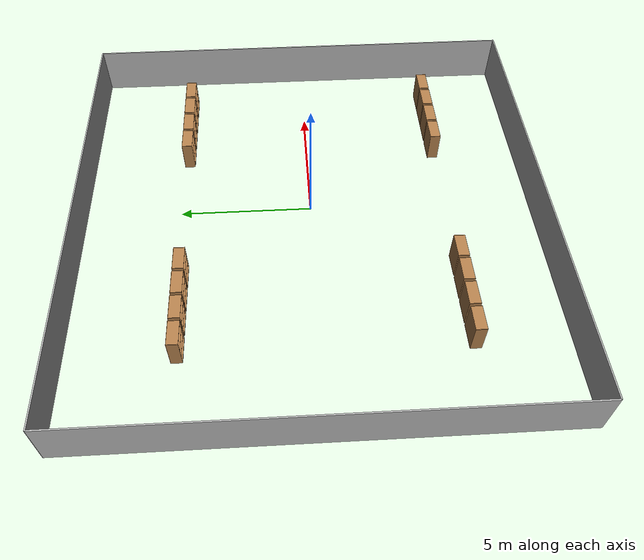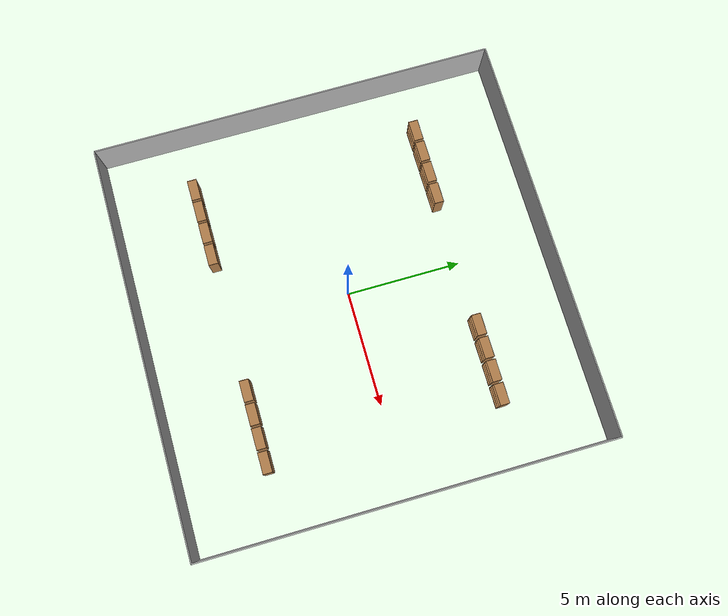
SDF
<sdf version="13">
 <model name="test_environment">
  <static>true</static>
  <link name="boundary_one">
   <pose>0 -9 0 0 0 0</pose>
   <collision name="collision"><geometry><box><size>18 .05 2</size></box></geometry></collision>
   <visual name="visual">
    <geometry><box><size>18 .05 2</size></box></geometry>
    <material>
     <script>
      <uri>model://brick_box_3x1x3/materials/scripts</uri>
      <uri>model://brick_box_3x1x3/materials/textures</uri>
      <name>BrickBox/Diffuse</name>
     </script>
    </material>
   </visual>
  </link>
  <link name="boundary_two">
   <pose>0 9 0 0 0 0</pose>
   <collision name="collision"><geometry><box><size>18 .05 2</size></box></geometry></collision>
   <visual name="visual">
    <geometry><box><size>18 .05 2</size></box></geometry>
    <material>
     <script>
      <uri>model://brick_box_3x1x3/materials/scripts</uri>
      <uri>model://brick_box_3x1x3/materials/textures</uri>
      <name>BrickBox/Diffuse</name>
     </script>
    </material>
   </visual>
  </link>
  <link name="boundary_three">
   <pose>9 0 0 0 0 1.57</pose>
   <collision name="collision"><geometry><box><size>18 .05 2</size></box></geometry></collision>
   <visual name="visual">
    <geometry><box><size>18 .05 2</size></box></geometry>
    <material>
     <script>
      <uri>model://brick_box_3x1x3/materials/scripts</uri>
      <uri>model://brick_box_3x1x3/materials/textures</uri>
      <name>BrickBox/Diffuse</name>
     </script>
    </material>
   </visual>
  </link>
  <link name="boundary_four">
   <pose>-9 0 0 0 0 1.57</pose>
   <collision name="collision"><geometry><box><size>18 .05 2</size></box></geometry></collision>
   <visual name="visual">
    <geometry><box><size>18 .05 2</size></box></geometry>
    <material>
     <script>
      <uri>model://brick_box_3x1x3/materials/scripts</uri>
      <uri>model://brick_box_3x1x3/materials/textures</uri>
      <name>BrickBox/Diffuse</name>
     </script>
    </material>
   </visual>
  </link>
  <link name="link">
   <pose>6 5 0 0 0 0</pose>
   <inertial><mass>1.0</mass></inertial>
   <collision name="back">
    <pose>0 0.005 0.6 0 0 0</pose>
    <geometry><box><size>0.9 0.01 1.2</size></box></geometry>
   </collision>
   <visual name="visual1">
    <pose>0 0.005 0.6 0 0 0</pose>
    <geometry><box><size>0.9 0.01 1.2</size></box></geometry>
    <material>
     <script><uri>file://media/materials/scripts/gazebo.material</uri><name>Gazebo/Wood</name></script>
    </material>
   </visual>
   <collision name="left_side">
    <pose>0.45 -0.195 0.6 0 0 0</pose>
    <geometry><box><size>0.02 0.4 1.2</size></box></geometry>
   </collision>
   <visual name="visual2">
    <pose>0.45 -0.195 0.6 0 0 0</pose>
    <geometry><box><size>0.02 0.4 1.2</size></box></geometry>
    <material>
     <script><uri>file://media/materials/scripts/gazebo.material</uri><name>Gazebo/Wood</name></script>
    </material>
   </visual>
   <collision name="right_side">
    <pose>-0.45 -0.195 0.6 0 0 0</pose>
    <geometry><box><size>0.02 0.4 1.2</size></box></geometry>
   </collision>
   <visual name="visual3">
    <pose>-0.45 -0.195 0.6 0 0 0</pose>
    <geometry><box><size>0.02 0.4 1.2</size></box></geometry>
    <material>
     <script><uri>file://media/materials/scripts/gazebo.material</uri><name>Gazebo/Wood</name></script>
    </material>
   </visual>
   <collision name="bottom">
    <pose>0 -0.195 0.03 0 0 0</pose>
    <geometry><box><size>0.88 0.4 0.06</size></box></geometry>
   </collision>
   <visual name="visual4">
    <pose>0 -0.195 0.03 0 0 0</pose>
    <geometry><box><size>0.88 0.4 0.06</size></box></geometry>
    <material>
     <script><uri>file://media/materials/scripts/gazebo.material</uri><name>Gazebo/Wood</name></script>
    </material>
   </visual>
   <collision name="top">
    <pose>0 -0.195 1.19 0 0 0</pose>
    <geometry><box><size>0.88 0.4 0.02</size></box></geometry>
   </collision>
   <visual name="visual5">
    <pose>0 -0.195 1.19 0 0 0</pose>
    <geometry><box><size>0.88 0.4 0.02</size></box></geometry>
    <material>
     <script><uri>file://media/materials/scripts/gazebo.material</uri><name>Gazebo/Wood</name></script>
    </material>
   </visual>
   <collision name="low_shelf">
    <pose>0 -0.195 0.43 0 0 0</pose>
    <geometry><box><size>0.88 0.4 0.02</size></box></geometry>
   </collision>
   <visual name="visual6">
    <pose>0 -0.195 0.43 0 0 0</pose>
    <geometry><box><size>0.88 0.4 0.02</size></box></geometry>
    <material>
     <script><uri>file://media/materials/scripts/gazebo.material</uri><name>Gazebo/Wood</name></script>
    </material>
   </visual>
   <collision name="high_shelf">
    <pose>0 -0.195 0.8 0 0 0</pose>
    <geometry><box><size>0.88 0.4 0.02</size></box></geometry>
   </collision>
   <visual name="visual7">
    <pose>0 -0.195 0.8 0 0 0</pose>
    <geometry><box><size>0.88 0.4 0.02</size></box></geometry>
    <material>
     <script><uri>file://media/materials/scripts/gazebo.material</uri><name>Gazebo/Wood</name></script>
    </material>
   </visual>
  </link>
  <link name="link">
   <pose>5 5 0 0 0 0</pose>
   <inertial><mass>1.0</mass></inertial>
   <collision name="back">
    <pose>0 0.005 0.6 0 0 0</pose>
    <geometry><box><size>0.9 0.01 1.2</size></box></geometry>
   </collision>
   <visual name="visual1">
    <pose>0 0.005 0.6 0 0 0</pose>
    <geometry><box><size>0.9 0.01 1.2</size></box></geometry>
    <material>
     <script><uri>file://media/materials/scripts/gazebo.material</uri><name>Gazebo/Wood</name></script>
    </material>
   </visual>
   <collision name="left_side">
    <pose>0.45 -0.195 0.6 0 0 0</pose>
    <geometry><box><size>0.02 0.4 1.2</size></box></geometry>
   </collision>
   <visual name="visual2">
    <pose>0.45 -0.195 0.6 0 0 0</pose>
    <geometry><box><size>0.02 0.4 1.2</size></box></geometry>
    <material>
     <script><uri>file://media/materials/scripts/gazebo.material</uri><name>Gazebo/Wood</name></script>
    </material>
   </visual>
   <collision name="right_side">
    <pose>-0.45 -0.195 0.6 0 0 0</pose>
    <geometry><box><size>0.02 0.4 1.2</size></box></geometry>
   </collision>
   <visual name="visual3">
    <pose>-0.45 -0.195 0.6 0 0 0</pose>
    <geometry><box><size>0.02 0.4 1.2</size></box></geometry>
    <material>
     <script><uri>file://media/materials/scripts/gazebo.material</uri><name>Gazebo/Wood</name></script>
    </material>
   </visual>
   <collision name="bottom">
    <pose>0 -0.195 0.03 0 0 0</pose>
    <geometry><box><size>0.88 0.4 0.06</size></box></geometry>
   </collision>
   <visual name="visual4">
    <pose>0 -0.195 0.03 0 0 0</pose>
    <geometry><box><size>0.88 0.4 0.06</size></box></geometry>
    <material>
     <script><uri>file://media/materials/scripts/gazebo.material</uri><name>Gazebo/Wood</name></script>
    </material>
   </visual>
   <collision name="top">
    <pose>0 -0.195 1.19 0 0 0</pose>
    <geometry><box><size>0.88 0.4 0.02</size></box></geometry>
   </collision>
   <visual name="visual5">
    <pose>0 -0.195 1.19 0 0 0</pose>
    <geometry><box><size>0.88 0.4 0.02</size></box></geometry>
    <material>
     <script><uri>file://media/materials/scripts/gazebo.material</uri><name>Gazebo/Wood</name></script>
    </material>
   </visual>
   <collision name="low_shelf">
    <pose>0 -0.195 0.43 0 0 0</pose>
    <geometry><box><size>0.88 0.4 0.02</size></box></geometry>
   </collision>
   <visual name="visual6">
    <pose>0 -0.195 0.43 0 0 0</pose>
    <geometry><box><size>0.88 0.4 0.02</size></box></geometry>
    <material>
     <script><uri>file://media/materials/scripts/gazebo.material</uri><name>Gazebo/Wood</name></script>
    </material>
   </visual>
   <collision name="high_shelf">
    <pose>0 -0.195 0.8 0 0 0</pose>
    <geometry><box><size>0.88 0.4 0.02</size></box></geometry>
   </collision>
   <visual name="visual7">
    <pose>0 -0.195 0.8 0 0 0</pose>
    <geometry><box><size>0.88 0.4 0.02</size></box></geometry>
    <material>
     <script><uri>file://media/materials/scripts/gazebo.material</uri><name>Gazebo/Wood</name></script>
    </material>
   </visual>
  </link>
  <link name="link">
   <pose>4 5 0 0 0 0</pose>
   <inertial><mass>1.0</mass></inertial>
   <collision name="back">
    <pose>0 0.005 0.6 0 0 0</pose>
    <geometry><box><size>0.9 0.01 1.2</size></box></geometry>
   </collision>
   <visual name="visual1">
    <pose>0 0.005 0.6 0 0 0</pose>
    <geometry><box><size>0.9 0.01 1.2</size></box></geometry>
    <material>
     <script><uri>file://media/materials/scripts/gazebo.material</uri><name>Gazebo/Wood</name></script>
    </material>
   </visual>
   <collision name="left_side">
    <pose>0.45 -0.195 0.6 0 0 0</pose>
    <geometry><box><size>0.02 0.4 1.2</size></box></geometry>
   </collision>
   <visual name="visual2">
    <pose>0.45 -0.195 0.6 0 0 0</pose>
    <geometry><box><size>0.02 0.4 1.2</size></box></geometry>
    <material>
     <script><uri>file://media/materials/scripts/gazebo.material</uri><name>Gazebo/Wood</name></script>
    </material>
   </visual>
   <collision name="right_side">
    <pose>-0.45 -0.195 0.6 0 0 0</pose>
    <geometry><box><size>0.02 0.4 1.2</size></box></geometry>
   </collision>
   <visual name="visual3">
    <pose>-0.45 -0.195 0.6 0 0 0</pose>
    <geometry><box><size>0.02 0.4 1.2</size></box></geometry>
    <material>
     <script><uri>file://media/materials/scripts/gazebo.material</uri><name>Gazebo/Wood</name></script>
    </material>
   </visual>
   <collision name="bottom">
    <pose>0 -0.195 0.03 0 0 0</pose>
    <geometry><box><size>0.88 0.4 0.06</size></box></geometry>
   </collision>
   <visual name="visual4">
    <pose>0 -0.195 0.03 0 0 0</pose>
    <geometry><box><size>0.88 0.4 0.06</size></box></geometry>
    <material>
     <script><uri>file://media/materials/scripts/gazebo.material</uri><name>Gazebo/Wood</name></script>
    </material>
   </visual>
   <collision name="top">
    <pose>0 -0.195 1.19 0 0 0</pose>
    <geometry><box><size>0.88 0.4 0.02</size></box></geometry>
   </collision>
   <visual name="visual5">
    <pose>0 -0.195 1.19 0 0 0</pose>
    <geometry><box><size>0.88 0.4 0.02</size></box></geometry>
    <material>
     <script><uri>file://media/materials/scripts/gazebo.material</uri><name>Gazebo/Wood</name></script>
    </material>
   </visual>
   <collision name="low_shelf">
    <pose>0 -0.195 0.43 0 0 0</pose>
    <geometry><box><size>0.88 0.4 0.02</size></box></geometry>
   </collision>
   <visual name="visual6">
    <pose>0 -0.195 0.43 0 0 0</pose>
    <geometry><box><size>0.88 0.4 0.02</size></box></geometry>
    <material>
     <script><uri>file://media/materials/scripts/gazebo.material</uri><name>Gazebo/Wood</name></script>
    </material>
   </visual>
   <collision name="high_shelf">
    <pose>0 -0.195 0.8 0 0 0</pose>
    <geometry><box><size>0.88 0.4 0.02</size></box></geometry>
   </collision>
   <visual name="visual7">
    <pose>0 -0.195 0.8 0 0 0</pose>
    <geometry><box><size>0.88 0.4 0.02</size></box></geometry>
    <material>
     <script><uri>file://media/materials/scripts/gazebo.material</uri><name>Gazebo/Wood</name></script>
    </material>
   </visual>
  </link>
  <link name="link">
   <pose>3 5 0 0 0 0</pose>
   <inertial><mass>1.0</mass></inertial>
   <collision name="back">
    <pose>0 0.005 0.6 0 0 0</pose>
    <geometry><box><size>0.9 0.01 1.2</size></box></geometry>
   </collision>
   <visual name="visual1">
    <pose>0 0.005 0.6 0 0 0</pose>
    <geometry><box><size>0.9 0.01 1.2</size></box></geometry>
    <material>
     <script><uri>file://media/materials/scripts/gazebo.material</uri><name>Gazebo/Wood</name></script>
    </material>
   </visual>
   <collision name="left_side">
    <pose>0.45 -0.195 0.6 0 0 0</pose>
    <geometry><box><size>0.02 0.4 1.2</size></box></geometry>
   </collision>
   <visual name="visual2">
    <pose>0.45 -0.195 0.6 0 0 0</pose>
    <geometry><box><size>0.02 0.4 1.2</size></box></geometry>
    <material>
     <script><uri>file://media/materials/scripts/gazebo.material</uri><name>Gazebo/Wood</name></script>
    </material>
   </visual>
   <collision name="right_side">
    <pose>-0.45 -0.195 0.6 0 0 0</pose>
    <geometry><box><size>0.02 0.4 1.2</size></box></geometry>
   </collision>
   <visual name="visual3">
    <pose>-0.45 -0.195 0.6 0 0 0</pose>
    <geometry><box><size>0.02 0.4 1.2</size></box></geometry>
    <material>
     <script><uri>file://media/materials/scripts/gazebo.material</uri><name>Gazebo/Wood</name></script>
    </material>
   </visual>
   <collision name="bottom">
    <pose>0 -0.195 0.03 0 0 0</pose>
    <geometry><box><size>0.88 0.4 0.06</size></box></geometry>
   </collision>
   <visual name="visual4">
    <pose>0 -0.195 0.03 0 0 0</pose>
    <geometry><box><size>0.88 0.4 0.06</size></box></geometry>
    <material>
     <script><uri>file://media/materials/scripts/gazebo.material</uri><name>Gazebo/Wood</name></script>
    </material>
   </visual>
   <collision name="top">
    <pose>0 -0.195 1.19 0 0 0</pose>
    <geometry><box><size>0.88 0.4 0.02</size></box></geometry>
   </collision>
   <visual name="visual5">
    <pose>0 -0.195 1.19 0 0 0</pose>
    <geometry><box><size>0.88 0.4 0.02</size></box></geometry>
    <material>
     <script><uri>file://media/materials/scripts/gazebo.material</uri><name>Gazebo/Wood</name></script>
    </material>
   </visual>
   <collision name="low_shelf">
    <pose>0 -0.195 0.43 0 0 0</pose>
    <geometry><box><size>0.88 0.4 0.02</size></box></geometry>
   </collision>
   <visual name="visual6">
    <pose>0 -0.195 0.43 0 0 0</pose>
    <geometry><box><size>0.88 0.4 0.02</size></box></geometry>
    <material>
     <script><uri>file://media/materials/scripts/gazebo.material</uri><name>Gazebo/Wood</name></script>
    </material>
   </visual>
   <collision name="high_shelf">
    <pose>0 -0.195 0.8 0 0 0</pose>
    <geometry><box><size>0.88 0.4 0.02</size></box></geometry>
   </collision>
   <visual name="visual7">
    <pose>0 -0.195 0.8 0 0 0</pose>
    <geometry><box><size>0.88 0.4 0.02</size></box></geometry>
    <material>
     <script><uri>file://media/materials/scripts/gazebo.material</uri><name>Gazebo/Wood</name></script>
    </material>
   </visual>
  </link>
  <link name="link">
   <pose>-3 5 0 0 0 0</pose>
   <inertial><mass>1.0</mass></inertial>
   <collision name="back">
    <pose>0 0.005 0.6 0 0 0</pose>
    <geometry><box><size>0.9 0.01 1.2</size></box></geometry>
   </collision>
   <visual name="visual1">
    <pose>0 0.005 0.6 0 0 0</pose>
    <geometry><box><size>0.9 0.01 1.2</size></box></geometry>
    <material>
     <script><uri>file://media/materials/scripts/gazebo.material</uri><name>Gazebo/Wood</name></script>
    </material>
   </visual>
   <collision name="left_side">
    <pose>0.45 -0.195 0.6 0 0 0</pose>
    <geometry><box><size>0.02 0.4 1.2</size></box></geometry>
   </collision>
   <visual name="visual2">
    <pose>0.45 -0.195 0.6 0 0 0</pose>
    <geometry><box><size>0.02 0.4 1.2</size></box></geometry>
    <material>
     <script><uri>file://media/materials/scripts/gazebo.material</uri><name>Gazebo/Wood</name></script>
    </material>
   </visual>
   <collision name="right_side">
    <pose>-0.45 -0.195 0.6 0 0 0</pose>
    <geometry><box><size>0.02 0.4 1.2</size></box></geometry>
   </collision>
   <visual name="visual3">
    <pose>-0.45 -0.195 0.6 0 0 0</pose>
    <geometry><box><size>0.02 0.4 1.2</size></box></geometry>
    <material>
     <script><uri>file://media/materials/scripts/gazebo.material</uri><name>Gazebo/Wood</name></script>
    </material>
   </visual>
   <collision name="bottom">
    <pose>0 -0.195 0.03 0 0 0</pose>
    <geometry><box><size>0.88 0.4 0.06</size></box></geometry>
   </collision>
   <visual name="visual4">
    <pose>0 -0.195 0.03 0 0 0</pose>
    <geometry><box><size>0.88 0.4 0.06</size></box></geometry>
    <material>
     <script><uri>file://media/materials/scripts/gazebo.material</uri><name>Gazebo/Wood</name></script>
    </material>
   </visual>
   <collision name="top">
    <pose>0 -0.195 1.19 0 0 0</pose>
    <geometry><box><size>0.88 0.4 0.02</size></box></geometry>
   </collision>
   <visual name="visual5">
    <pose>0 -0.195 1.19 0 0 0</pose>
    <geometry><box><size>0.88 0.4 0.02</size></box></geometry>
    <material>
     <script><uri>file://media/materials/scripts/gazebo.material</uri><name>Gazebo/Wood</name></script>
    </material>
   </visual>
   <collision name="low_shelf">
    <pose>0 -0.195 0.43 0 0 0</pose>
    <geometry><box><size>0.88 0.4 0.02</size></box></geometry>
   </collision>
   <visual name="visual6">
    <pose>0 -0.195 0.43 0 0 0</pose>
    <geometry><box><size>0.88 0.4 0.02</size></box></geometry>
    <material>
     <script><uri>file://media/materials/scripts/gazebo.material</uri><name>Gazebo/Wood</name></script>
    </material>
   </visual>
   <collision name="high_shelf">
    <pose>0 -0.195 0.8 0 0 0</pose>
    <geometry><box><size>0.88 0.4 0.02</size></box></geometry>
   </collision>
   <visual name="visual7">
    <pose>0 -0.195 0.8 0 0 0</pose>
    <geometry><box><size>0.88 0.4 0.02</size></box></geometry>
    <material>
     <script><uri>file://media/materials/scripts/gazebo.material</uri><name>Gazebo/Wood</name></script>
    </material>
   </visual>
  </link>
  <link name="link">
   <pose>-4 5 0 0 0 0</pose>
   <inertial><mass>1.0</mass></inertial>
   <collision name="back">
    <pose>0 0.005 0.6 0 0 0</pose>
    <geometry><box><size>0.9 0.01 1.2</size></box></geometry>
   </collision>
   <visual name="visual1">
    <pose>0 0.005 0.6 0 0 0</pose>
    <geometry><box><size>0.9 0.01 1.2</size></box></geometry>
    <material>
     <script><uri>file://media/materials/scripts/gazebo.material</uri><name>Gazebo/Wood</name></script>
    </material>
   </visual>
   <collision name="left_side">
    <pose>0.45 -0.195 0.6 0 0 0</pose>
    <geometry><box><size>0.02 0.4 1.2</size></box></geometry>
   </collision>
   <visual name="visual2">
    <pose>0.45 -0.195 0.6 0 0 0</pose>
    <geometry><box><size>0.02 0.4 1.2</size></box></geometry>
    <material>
     <script><uri>file://media/materials/scripts/gazebo.material</uri><name>Gazebo/Wood</name></script>
    </material>
   </visual>
   <collision name="right_side">
    <pose>-0.45 -0.195 0.6 0 0 0</pose>
    <geometry><box><size>0.02 0.4 1.2</size></box></geometry>
   </collision>
   <visual name="visual3">
    <pose>-0.45 -0.195 0.6 0 0 0</pose>
    <geometry><box><size>0.02 0.4 1.2</size></box></geometry>
    <material>
     <script><uri>file://media/materials/scripts/gazebo.material</uri><name>Gazebo/Wood</name></script>
    </material>
   </visual>
   <collision name="bottom">
    <pose>0 -0.195 0.03 0 0 0</pose>
    <geometry><box><size>0.88 0.4 0.06</size></box></geometry>
   </collision>
   <visual name="visual4">
    <pose>0 -0.195 0.03 0 0 0</pose>
    <geometry><box><size>0.88 0.4 0.06</size></box></geometry>
    <material>
     <script><uri>file://media/materials/scripts/gazebo.material</uri><name>Gazebo/Wood</name></script>
    </material>
   </visual>
   <collision name="top">
    <pose>0 -0.195 1.19 0 0 0</pose>
    <geometry><box><size>0.88 0.4 0.02</size></box></geometry>
   </collision>
   <visual name="visual5">
    <pose>0 -0.195 1.19 0 0 0</pose>
    <geometry><box><size>0.88 0.4 0.02</size></box></geometry>
    <material>
     <script><uri>file://media/materials/scripts/gazebo.material</uri><name>Gazebo/Wood</name></script>
    </material>
   </visual>
   <collision name="low_shelf">
    <pose>0 -0.195 0.43 0 0 0</pose>
    <geometry><box><size>0.88 0.4 0.02</size></box></geometry>
   </collision>
   <visual name="visual6">
    <pose>0 -0.195 0.43 0 0 0</pose>
    <geometry><box><size>0.88 0.4 0.02</size></box></geometry>
    <material>
     <script><uri>file://media/materials/scripts/gazebo.material</uri><name>Gazebo/Wood</name></script>
    </material>
   </visual>
   <collision name="high_shelf">
    <pose>0 -0.195 0.8 0 0 0</pose>
    <geometry><box><size>0.88 0.4 0.02</size></box></geometry>
   </collision>
   <visual name="visual7">
    <pose>0 -0.195 0.8 0 0 0</pose>
    <geometry><box><size>0.88 0.4 0.02</size></box></geometry>
    <material>
     <script><uri>file://media/materials/scripts/gazebo.material</uri><name>Gazebo/Wood</name></script>
    </material>
   </visual>
  </link>
  <link name="link">
   <pose>-5 5 0 0 0 0</pose>
   <inertial><mass>1.0</mass></inertial>
   <collision name="back">
    <pose>0 0.005 0.6 0 0 0</pose>
    <geometry><box><size>0.9 0.01 1.2</size></box></geometry>
   </collision>
   <visual name="visual1">
    <pose>0 0.005 0.6 0 0 0</pose>
    <geometry><box><size>0.9 0.01 1.2</size></box></geometry>
    <material>
     <script><uri>file://media/materials/scripts/gazebo.material</uri><name>Gazebo/Wood</name></script>
    </material>
   </visual>
   <collision name="left_side">
    <pose>0.45 -0.195 0.6 0 0 0</pose>
    <geometry><box><size>0.02 0.4 1.2</size></box></geometry>
   </collision>
   <visual name="visual2">
    <pose>0.45 -0.195 0.6 0 0 0</pose>
    <geometry><box><size>0.02 0.4 1.2</size></box></geometry>
    <material>
     <script><uri>file://media/materials/scripts/gazebo.material</uri><name>Gazebo/Wood</name></script>
    </material>
   </visual>
   <collision name="right_side">
    <pose>-0.45 -0.195 0.6 0 0 0</pose>
    <geometry><box><size>0.02 0.4 1.2</size></box></geometry>
   </collision>
   <visual name="visual3">
    <pose>-0.45 -0.195 0.6 0 0 0</pose>
    <geometry><box><size>0.02 0.4 1.2</size></box></geometry>
    <material>
     <script><uri>file://media/materials/scripts/gazebo.material</uri><name>Gazebo/Wood</name></script>
    </material>
   </visual>
   <collision name="bottom">
    <pose>0 -0.195 0.03 0 0 0</pose>
    <geometry><box><size>0.88 0.4 0.06</size></box></geometry>
   </collision>
   <visual name="visual4">
    <pose>0 -0.195 0.03 0 0 0</pose>
    <geometry><box><size>0.88 0.4 0.06</size></box></geometry>
    <material>
     <script><uri>file://media/materials/scripts/gazebo.material</uri><name>Gazebo/Wood</name></script>
    </material>
   </visual>
   <collision name="top">
    <pose>0 -0.195 1.19 0 0 0</pose>
    <geometry><box><size>0.88 0.4 0.02</size></box></geometry>
   </collision>
   <visual name="visual5">
    <pose>0 -0.195 1.19 0 0 0</pose>
    <geometry><box><size>0.88 0.4 0.02</size></box></geometry>
    <material>
     <script><uri>file://media/materials/scripts/gazebo.material</uri><name>Gazebo/Wood</name></script>
    </material>
   </visual>
   <collision name="low_shelf">
    <pose>0 -0.195 0.43 0 0 0</pose>
    <geometry><box><size>0.88 0.4 0.02</size></box></geometry>
   </collision>
   <visual name="visual6">
    <pose>0 -0.195 0.43 0 0 0</pose>
    <geometry><box><size>0.88 0.4 0.02</size></box></geometry>
    <material>
     <script><uri>file://media/materials/scripts/gazebo.material</uri><name>Gazebo/Wood</name></script>
    </material>
   </visual>
   <collision name="high_shelf">
    <pose>0 -0.195 0.8 0 0 0</pose>
    <geometry><box><size>0.88 0.4 0.02</size></box></geometry>
   </collision>
   <visual name="visual7">
    <pose>0 -0.195 0.8 0 0 0</pose>
    <geometry><box><size>0.88 0.4 0.02</size></box></geometry>
    <material>
     <script><uri>file://media/materials/scripts/gazebo.material</uri><name>Gazebo/Wood</name></script>
    </material>
   </visual>
  </link>
  <link name="link">
   <pose>-6 5 0 0 0 0</pose>
   <inertial><mass>1.0</mass></inertial>
   <collision name="back">
    <pose>0 0.005 0.6 0 0 0</pose>
    <geometry><box><size>0.9 0.01 1.2</size></box></geometry>
   </collision>
   <visual name="visual1">
    <pose>0 0.005 0.6 0 0 0</pose>
    <geometry><box><size>0.9 0.01 1.2</size></box></geometry>
    <material>
     <script><uri>file://media/materials/scripts/gazebo.material</uri><name>Gazebo/Wood</name></script>
    </material>
   </visual>
   <collision name="left_side">
    <pose>0.45 -0.195 0.6 0 0 0</pose>
    <geometry><box><size>0.02 0.4 1.2</size></box></geometry>
   </collision>
   <visual name="visual2">
    <pose>0.45 -0.195 0.6 0 0 0</pose>
    <geometry><box><size>0.02 0.4 1.2</size></box></geometry>
    <material>
     <script><uri>file://media/materials/scripts/gazebo.material</uri><name>Gazebo/Wood</name></script>
    </material>
   </visual>
   <collision name="right_side">
    <pose>-0.45 -0.195 0.6 0 0 0</pose>
    <geometry><box><size>0.02 0.4 1.2</size></box></geometry>
   </collision>
   <visual name="visual3">
    <pose>-0.45 -0.195 0.6 0 0 0</pose>
    <geometry><box><size>0.02 0.4 1.2</size></box></geometry>
    <material>
     <script><uri>file://media/materials/scripts/gazebo.material</uri><name>Gazebo/Wood</name></script>
    </material>
   </visual>
   <collision name="bottom">
    <pose>0 -0.195 0.03 0 0 0</pose>
    <geometry><box><size>0.88 0.4 0.06</size></box></geometry>
   </collision>
   <visual name="visual4">
    <pose>0 -0.195 0.03 0 0 0</pose>
    <geometry><box><size>0.88 0.4 0.06</size></box></geometry>
    <material>
     <script><uri>file://media/materials/scripts/gazebo.material</uri><name>Gazebo/Wood</name></script>
    </material>
   </visual>
   <collision name="top">
    <pose>0 -0.195 1.19 0 0 0</pose>
    <geometry><box><size>0.88 0.4 0.02</size></box></geometry>
   </collision>
   <visual name="visual5">
    <pose>0 -0.195 1.19 0 0 0</pose>
    <geometry><box><size>0.88 0.4 0.02</size></box></geometry>
    <material>
     <script><uri>file://media/materials/scripts/gazebo.material</uri><name>Gazebo/Wood</name></script>
    </material>
   </visual>
   <collision name="low_shelf">
    <pose>0 -0.195 0.43 0 0 0</pose>
    <geometry><box><size>0.88 0.4 0.02</size></box></geometry>
   </collision>
   <visual name="visual6">
    <pose>0 -0.195 0.43 0 0 0</pose>
    <geometry><box><size>0.88 0.4 0.02</size></box></geometry>
    <material>
     <script><uri>file://media/materials/scripts/gazebo.material</uri><name>Gazebo/Wood</name></script>
    </material>
   </visual>
   <collision name="high_shelf">
    <pose>0 -0.195 0.8 0 0 0</pose>
    <geometry><box><size>0.88 0.4 0.02</size></box></geometry>
   </collision>
   <visual name="visual7">
    <pose>0 -0.195 0.8 0 0 0</pose>
    <geometry><box><size>0.88 0.4 0.02</size></box></geometry>
    <material>
     <script><uri>file://media/materials/scripts/gazebo.material</uri><name>Gazebo/Wood</name></script>
    </material>
   </visual>
  </link>
  <link name="link">
   <pose>6 -5 0 0 0 0</pose>
   <inertial><mass>1.0</mass></inertial>
   <collision name="back">
    <pose>0 0.005 0.6 0 0 0</pose>
    <geometry><box><size>0.9 0.01 1.2</size></box></geometry>
   </collision>
   <visual name="visual1">
    <pose>0 0.005 0.6 0 0 0</pose>
    <geometry><box><size>0.9 0.01 1.2</size></box></geometry>
    <material>
     <script><uri>file://media/materials/scripts/gazebo.material</uri><name>Gazebo/Wood</name></script>
    </material>
   </visual>
   <collision name="left_side">
    <pose>0.45 -0.195 0.6 0 0 0</pose>
    <geometry><box><size>0.02 0.4 1.2</size></box></geometry>
   </collision>
   <visual name="visual2">
    <pose>0.45 -0.195 0.6 0 0 0</pose>
    <geometry><box><size>0.02 0.4 1.2</size></box></geometry>
    <material>
     <script><uri>file://media/materials/scripts/gazebo.material</uri><name>Gazebo/Wood</name></script>
    </material>
   </visual>
   <collision name="right_side">
    <pose>-0.45 -0.195 0.6 0 0 0</pose>
    <geometry><box><size>0.02 0.4 1.2</size></box></geometry>
   </collision>
   <visual name="visual3">
    <pose>-0.45 -0.195 0.6 0 0 0</pose>
    <geometry><box><size>0.02 0.4 1.2</size></box></geometry>
    <material>
     <script><uri>file://media/materials/scripts/gazebo.material</uri><name>Gazebo/Wood</name></script>
    </material>
   </visual>
   <collision name="bottom">
    <pose>0 -0.195 0.03 0 0 0</pose>
    <geometry><box><size>0.88 0.4 0.06</size></box></geometry>
   </collision>
   <visual name="visual4">
    <pose>0 -0.195 0.03 0 0 0</pose>
    <geometry><box><size>0.88 0.4 0.06</size></box></geometry>
    <material>
     <script><uri>file://media/materials/scripts/gazebo.material</uri><name>Gazebo/Wood</name></script>
    </material>
   </visual>
   <collision name="top">
    <pose>0 -0.195 1.19 0 0 0</pose>
    <geometry><box><size>0.88 0.4 0.02</size></box></geometry>
   </collision>
   <visual name="visual5">
    <pose>0 -0.195 1.19 0 0 0</pose>
    <geometry><box><size>0.88 0.4 0.02</size></box></geometry>
    <material>
     <script><uri>file://media/materials/scripts/gazebo.material</uri><name>Gazebo/Wood</name></script>
    </material>
   </visual>
   <collision name="low_shelf">
    <pose>0 -0.195 0.43 0 0 0</pose>
    <geometry><box><size>0.88 0.4 0.02</size></box></geometry>
   </collision>
   <visual name="visual6">
    <pose>0 -0.195 0.43 0 0 0</pose>
    <geometry><box><size>0.88 0.4 0.02</size></box></geometry>
    <material>
     <script><uri>file://media/materials/scripts/gazebo.material</uri><name>Gazebo/Wood</name></script>
    </material>
   </visual>
   <collision name="high_shelf">
    <pose>0 -0.195 0.8 0 0 0</pose>
    <geometry><box><size>0.88 0.4 0.02</size></box></geometry>
   </collision>
   <visual name="visual7">
    <pose>0 -0.195 0.8 0 0 0</pose>
    <geometry><box><size>0.88 0.4 0.02</size></box></geometry>
    <material>
     <script><uri>file://media/materials/scripts/gazebo.material</uri><name>Gazebo/Wood</name></script>
    </material>
   </visual>
  </link>
  <link name="link">
   <pose>5 -5 0 0 0 0</pose>
   <inertial><mass>1.0</mass></inertial>
   <collision name="back">
    <pose>0 0.005 0.6 0 0 0</pose>
    <geometry><box><size>0.9 0.01 1.2</size></box></geometry>
   </collision>
   <visual name="visual1">
    <pose>0 0.005 0.6 0 0 0</pose>
    <geometry><box><size>0.9 0.01 1.2</size></box></geometry>
    <material>
     <script><uri>file://media/materials/scripts/gazebo.material</uri><name>Gazebo/Wood</name></script>
    </material>
   </visual>
   <collision name="left_side">
    <pose>0.45 -0.195 0.6 0 0 0</pose>
    <geometry><box><size>0.02 0.4 1.2</size></box></geometry>
   </collision>
   <visual name="visual2">
    <pose>0.45 -0.195 0.6 0 0 0</pose>
    <geometry><box><size>0.02 0.4 1.2</size></box></geometry>
    <material>
     <script><uri>file://media/materials/scripts/gazebo.material</uri><name>Gazebo/Wood</name></script>
    </material>
   </visual>
   <collision name="right_side">
    <pose>-0.45 -0.195 0.6 0 0 0</pose>
    <geometry><box><size>0.02 0.4 1.2</size></box></geometry>
   </collision>
   <visual name="visual3">
    <pose>-0.45 -0.195 0.6 0 0 0</pose>
    <geometry><box><size>0.02 0.4 1.2</size></box></geometry>
    <material>
     <script><uri>file://media/materials/scripts/gazebo.material</uri><name>Gazebo/Wood</name></script>
    </material>
   </visual>
   <collision name="bottom">
    <pose>0 -0.195 0.03 0 0 0</pose>
    <geometry><box><size>0.88 0.4 0.06</size></box></geometry>
   </collision>
   <visual name="visual4">
    <pose>0 -0.195 0.03 0 0 0</pose>
    <geometry><box><size>0.88 0.4 0.06</size></box></geometry>
    <material>
     <script><uri>file://media/materials/scripts/gazebo.material</uri><name>Gazebo/Wood</name></script>
    </material>
   </visual>
   <collision name="top">
    <pose>0 -0.195 1.19 0 0 0</pose>
    <geometry><box><size>0.88 0.4 0.02</size></box></geometry>
   </collision>
   <visual name="visual5">
    <pose>0 -0.195 1.19 0 0 0</pose>
    <geometry><box><size>0.88 0.4 0.02</size></box></geometry>
    <material>
     <script><uri>file://media/materials/scripts/gazebo.material</uri><name>Gazebo/Wood</name></script>
    </material>
   </visual>
   <collision name="low_shelf">
    <pose>0 -0.195 0.43 0 0 0</pose>
    <geometry><box><size>0.88 0.4 0.02</size></box></geometry>
   </collision>
   <visual name="visual6">
    <pose>0 -0.195 0.43 0 0 0</pose>
    <geometry><box><size>0.88 0.4 0.02</size></box></geometry>
    <material>
     <script><uri>file://media/materials/scripts/gazebo.material</uri><name>Gazebo/Wood</name></script>
    </material>
   </visual>
   <collision name="high_shelf">
    <pose>0 -0.195 0.8 0 0 0</pose>
    <geometry><box><size>0.88 0.4 0.02</size></box></geometry>
   </collision>
   <visual name="visual7">
    <pose>0 -0.195 0.8 0 0 0</pose>
    <geometry><box><size>0.88 0.4 0.02</size></box></geometry>
    <material>
     <script><uri>file://media/materials/scripts/gazebo.material</uri><name>Gazebo/Wood</name></script>
    </material>
   </visual>
  </link>
  <link name="link">
   <pose>4 -5 0 0 0 0</pose>
   <inertial><mass>1.0</mass></inertial>
   <collision name="back">
    <pose>0 0.005 0.6 0 0 0</pose>
    <geometry><box><size>0.9 0.01 1.2</size></box></geometry>
   </collision>
   <visual name="visual1">
    <pose>0 0.005 0.6 0 0 0</pose>
    <geometry><box><size>0.9 0.01 1.2</size></box></geometry>
    <material>
     <script><uri>file://media/materials/scripts/gazebo.material</uri><name>Gazebo/Wood</name></script>
    </material>
   </visual>
   <collision name="left_side">
    <pose>0.45 -0.195 0.6 0 0 0</pose>
    <geometry><box><size>0.02 0.4 1.2</size></box></geometry>
   </collision>
   <visual name="visual2">
    <pose>0.45 -0.195 0.6 0 0 0</pose>
    <geometry><box><size>0.02 0.4 1.2</size></box></geometry>
    <material>
     <script><uri>file://media/materials/scripts/gazebo.material</uri><name>Gazebo/Wood</name></script>
    </material>
   </visual>
   <collision name="right_side">
    <pose>-0.45 -0.195 0.6 0 0 0</pose>
    <geometry><box><size>0.02 0.4 1.2</size></box></geometry>
   </collision>
   <visual name="visual3">
    <pose>-0.45 -0.195 0.6 0 0 0</pose>
    <geometry><box><size>0.02 0.4 1.2</size></box></geometry>
    <material>
     <script><uri>file://media/materials/scripts/gazebo.material</uri><name>Gazebo/Wood</name></script>
    </material>
   </visual>
   <collision name="bottom">
    <pose>0 -0.195 0.03 0 0 0</pose>
    <geometry><box><size>0.88 0.4 0.06</size></box></geometry>
   </collision>
   <visual name="visual4">
    <pose>0 -0.195 0.03 0 0 0</pose>
    <geometry><box><size>0.88 0.4 0.06</size></box></geometry>
    <material>
     <script><uri>file://media/materials/scripts/gazebo.material</uri><name>Gazebo/Wood</name></script>
    </material>
   </visual>
   <collision name="top">
    <pose>0 -0.195 1.19 0 0 0</pose>
    <geometry><box><size>0.88 0.4 0.02</size></box></geometry>
   </collision>
   <visual name="visual5">
    <pose>0 -0.195 1.19 0 0 0</pose>
    <geometry><box><size>0.88 0.4 0.02</size></box></geometry>
    <material>
     <script><uri>file://media/materials/scripts/gazebo.material</uri><name>Gazebo/Wood</name></script>
    </material>
   </visual>
   <collision name="low_shelf">
    <pose>0 -0.195 0.43 0 0 0</pose>
    <geometry><box><size>0.88 0.4 0.02</size></box></geometry>
   </collision>
   <visual name="visual6">
    <pose>0 -0.195 0.43 0 0 0</pose>
    <geometry><box><size>0.88 0.4 0.02</size></box></geometry>
    <material>
     <script><uri>file://media/materials/scripts/gazebo.material</uri><name>Gazebo/Wood</name></script>
    </material>
   </visual>
   <collision name="high_shelf">
    <pose>0 -0.195 0.8 0 0 0</pose>
    <geometry><box><size>0.88 0.4 0.02</size></box></geometry>
   </collision>
   <visual name="visual7">
    <pose>0 -0.195 0.8 0 0 0</pose>
    <geometry><box><size>0.88 0.4 0.02</size></box></geometry>
    <material>
     <script><uri>file://media/materials/scripts/gazebo.material</uri><name>Gazebo/Wood</name></script>
    </material>
   </visual>
  </link>
  <link name="link">
   <pose>3 -5 0 0 0 0</pose>
   <inertial><mass>1.0</mass></inertial>
   <collision name="back">
    <pose>0 0.005 0.6 0 0 0</pose>
    <geometry><box><size>0.9 0.01 1.2</size></box></geometry>
   </collision>
   <visual name="visual1">
    <pose>0 0.005 0.6 0 0 0</pose>
    <geometry><box><size>0.9 0.01 1.2</size></box></geometry>
    <material>
     <script><uri>file://media/materials/scripts/gazebo.material</uri><name>Gazebo/Wood</name></script>
    </material>
   </visual>
   <collision name="left_side">
    <pose>0.45 -0.195 0.6 0 0 0</pose>
    <geometry><box><size>0.02 0.4 1.2</size></box></geometry>
   </collision>
   <visual name="visual2">
    <pose>0.45 -0.195 0.6 0 0 0</pose>
    <geometry><box><size>0.02 0.4 1.2</size></box></geometry>
    <material>
     <script><uri>file://media/materials/scripts/gazebo.material</uri><name>Gazebo/Wood</name></script>
    </material>
   </visual>
   <collision name="right_side">
    <pose>-0.45 -0.195 0.6 0 0 0</pose>
    <geometry><box><size>0.02 0.4 1.2</size></box></geometry>
   </collision>
   <visual name="visual3">
    <pose>-0.45 -0.195 0.6 0 0 0</pose>
    <geometry><box><size>0.02 0.4 1.2</size></box></geometry>
    <material>
     <script><uri>file://media/materials/scripts/gazebo.material</uri><name>Gazebo/Wood</name></script>
    </material>
   </visual>
   <collision name="bottom">
    <pose>0 -0.195 0.03 0 0 0</pose>
    <geometry><box><size>0.88 0.4 0.06</size></box></geometry>
   </collision>
   <visual name="visual4">
    <pose>0 -0.195 0.03 0 0 0</pose>
    <geometry><box><size>0.88 0.4 0.06</size></box></geometry>
    <material>
     <script><uri>file://media/materials/scripts/gazebo.material</uri><name>Gazebo/Wood</name></script>
    </material>
   </visual>
   <collision name="top">
    <pose>0 -0.195 1.19 0 0 0</pose>
    <geometry><box><size>0.88 0.4 0.02</size></box></geometry>
   </collision>
   <visual name="visual5">
    <pose>0 -0.195 1.19 0 0 0</pose>
    <geometry><box><size>0.88 0.4 0.02</size></box></geometry>
    <material>
     <script><uri>file://media/materials/scripts/gazebo.material</uri><name>Gazebo/Wood</name></script>
    </material>
   </visual>
   <collision name="low_shelf">
    <pose>0 -0.195 0.43 0 0 0</pose>
    <geometry><box><size>0.88 0.4 0.02</size></box></geometry>
   </collision>
   <visual name="visual6">
    <pose>0 -0.195 0.43 0 0 0</pose>
    <geometry><box><size>0.88 0.4 0.02</size></box></geometry>
    <material>
     <script><uri>file://media/materials/scripts/gazebo.material</uri><name>Gazebo/Wood</name></script>
    </material>
   </visual>
   <collision name="high_shelf">
    <pose>0 -0.195 0.8 0 0 0</pose>
    <geometry><box><size>0.88 0.4 0.02</size></box></geometry>
   </collision>
   <visual name="visual7">
    <pose>0 -0.195 0.8 0 0 0</pose>
    <geometry><box><size>0.88 0.4 0.02</size></box></geometry>
    <material>
     <script><uri>file://media/materials/scripts/gazebo.material</uri><name>Gazebo/Wood</name></script>
    </material>
   </visual>
  </link>
  <link name="link">
   <pose>-3 -5 0 0 0 0</pose>
   <inertial><mass>1.0</mass></inertial>
   <collision name="back">
    <pose>0 0.005 0.6 0 0 0</pose>
    <geometry><box><size>0.9 0.01 1.2</size></box></geometry>
   </collision>
   <visual name="visual1">
    <pose>0 0.005 0.6 0 0 0</pose>
    <geometry><box><size>0.9 0.01 1.2</size></box></geometry>
    <material>
     <script><uri>file://media/materials/scripts/gazebo.material</uri><name>Gazebo/Wood</name></script>
    </material>
   </visual>
   <collision name="left_side">
    <pose>0.45 -0.195 0.6 0 0 0</pose>
    <geometry><box><size>0.02 0.4 1.2</size></box></geometry>
   </collision>
   <visual name="visual2">
    <pose>0.45 -0.195 0.6 0 0 0</pose>
    <geometry><box><size>0.02 0.4 1.2</size></box></geometry>
    <material>
     <script><uri>file://media/materials/scripts/gazebo.material</uri><name>Gazebo/Wood</name></script>
    </material>
   </visual>
   <collision name="right_side">
    <pose>-0.45 -0.195 0.6 0 0 0</pose>
    <geometry><box><size>0.02 0.4 1.2</size></box></geometry>
   </collision>
   <visual name="visual3">
    <pose>-0.45 -0.195 0.6 0 0 0</pose>
    <geometry><box><size>0.02 0.4 1.2</size></box></geometry>
    <material>
     <script><uri>file://media/materials/scripts/gazebo.material</uri><name>Gazebo/Wood</name></script>
    </material>
   </visual>
   <collision name="bottom">
    <pose>0 -0.195 0.03 0 0 0</pose>
    <geometry><box><size>0.88 0.4 0.06</size></box></geometry>
   </collision>
   <visual name="visual4">
    <pose>0 -0.195 0.03 0 0 0</pose>
    <geometry><box><size>0.88 0.4 0.06</size></box></geometry>
    <material>
     <script><uri>file://media/materials/scripts/gazebo.material</uri><name>Gazebo/Wood</name></script>
    </material>
   </visual>
   <collision name="top">
    <pose>0 -0.195 1.19 0 0 0</pose>
    <geometry><box><size>0.88 0.4 0.02</size></box></geometry>
   </collision>
   <visual name="visual5">
    <pose>0 -0.195 1.19 0 0 0</pose>
    <geometry><box><size>0.88 0.4 0.02</size></box></geometry>
    <material>
     <script><uri>file://media/materials/scripts/gazebo.material</uri><name>Gazebo/Wood</name></script>
    </material>
   </visual>
   <collision name="low_shelf">
    <pose>0 -0.195 0.43 0 0 0</pose>
    <geometry><box><size>0.88 0.4 0.02</size></box></geometry>
   </collision>
   <visual name="visual6">
    <pose>0 -0.195 0.43 0 0 0</pose>
    <geometry><box><size>0.88 0.4 0.02</size></box></geometry>
    <material>
     <script><uri>file://media/materials/scripts/gazebo.material</uri><name>Gazebo/Wood</name></script>
    </material>
   </visual>
   <collision name="high_shelf">
    <pose>0 -0.195 0.8 0 0 0</pose>
    <geometry><box><size>0.88 0.4 0.02</size></box></geometry>
   </collision>
   <visual name="visual7">
    <pose>0 -0.195 0.8 0 0 0</pose>
    <geometry><box><size>0.88 0.4 0.02</size></box></geometry>
    <material>
     <script><uri>file://media/materials/scripts/gazebo.material</uri><name>Gazebo/Wood</name></script>
    </material>
   </visual>
  </link>
  <link name="link">
   <pose>-4 -5 0 0 0 0</pose>
   <inertial><mass>1.0</mass></inertial>
   <collision name="back">
    <pose>0 0.005 0.6 0 0 0</pose>
    <geometry><box><size>0.9 0.01 1.2</size></box></geometry>
   </collision>
   <visual name="visual1">
    <pose>0 0.005 0.6 0 0 0</pose>
    <geometry><box><size>0.9 0.01 1.2</size></box></geometry>
    <material>
     <script><uri>file://media/materials/scripts/gazebo.material</uri><name>Gazebo/Wood</name></script>
    </material>
   </visual>
   <collision name="left_side">
    <pose>0.45 -0.195 0.6 0 0 0</pose>
    <geometry><box><size>0.02 0.4 1.2</size></box></geometry>
   </collision>
   <visual name="visual2">
    <pose>0.45 -0.195 0.6 0 0 0</pose>
    <geometry><box><size>0.02 0.4 1.2</size></box></geometry>
    <material>
     <script><uri>file://media/materials/scripts/gazebo.material</uri><name>Gazebo/Wood</name></script>
    </material>
   </visual>
   <collision name="right_side">
    <pose>-0.45 -0.195 0.6 0 0 0</pose>
    <geometry><box><size>0.02 0.4 1.2</size></box></geometry>
   </collision>
   <visual name="visual3">
    <pose>-0.45 -0.195 0.6 0 0 0</pose>
    <geometry><box><size>0.02 0.4 1.2</size></box></geometry>
    <material>
     <script><uri>file://media/materials/scripts/gazebo.material</uri><name>Gazebo/Wood</name></script>
    </material>
   </visual>
   <collision name="bottom">
    <pose>0 -0.195 0.03 0 0 0</pose>
    <geometry><box><size>0.88 0.4 0.06</size></box></geometry>
   </collision>
   <visual name="visual4">
    <pose>0 -0.195 0.03 0 0 0</pose>
    <geometry><box><size>0.88 0.4 0.06</size></box></geometry>
    <material>
     <script><uri>file://media/materials/scripts/gazebo.material</uri><name>Gazebo/Wood</name></script>
    </material>
   </visual>
   <collision name="top">
    <pose>0 -0.195 1.19 0 0 0</pose>
    <geometry><box><size>0.88 0.4 0.02</size></box></geometry>
   </collision>
   <visual name="visual5">
    <pose>0 -0.195 1.19 0 0 0</pose>
    <geometry><box><size>0.88 0.4 0.02</size></box></geometry>
    <material>
     <script><uri>file://media/materials/scripts/gazebo.material</uri><name>Gazebo/Wood</name></script>
    </material>
   </visual>
   <collision name="low_shelf">
    <pose>0 -0.195 0.43 0 0 0</pose>
    <geometry><box><size>0.88 0.4 0.02</size></box></geometry>
   </collision>
   <visual name="visual6">
    <pose>0 -0.195 0.43 0 0 0</pose>
    <geometry><box><size>0.88 0.4 0.02</size></box></geometry>
    <material>
     <script><uri>file://media/materials/scripts/gazebo.material</uri><name>Gazebo/Wood</name></script>
    </material>
   </visual>
   <collision name="high_shelf">
    <pose>0 -0.195 0.8 0 0 0</pose>
    <geometry><box><size>0.88 0.4 0.02</size></box></geometry>
   </collision>
   <visual name="visual7">
    <pose>0 -0.195 0.8 0 0 0</pose>
    <geometry><box><size>0.88 0.4 0.02</size></box></geometry>
    <material>
     <script><uri>file://media/materials/scripts/gazebo.material</uri><name>Gazebo/Wood</name></script>
    </material>
   </visual>
  </link>
  <link name="link">
   <pose>-5 -5 0 0 0 0</pose>
   <inertial><mass>1.0</mass></inertial>
   <collision name="back">
    <pose>0 0.005 0.6 0 0 0</pose>
    <geometry><box><size>0.9 0.01 1.2</size></box></geometry>
   </collision>
   <visual name="visual1">
    <pose>0 0.005 0.6 0 0 0</pose>
    <geometry><box><size>0.9 0.01 1.2</size></box></geometry>
    <material>
     <script><uri>file://media/materials/scripts/gazebo.material</uri><name>Gazebo/Wood</name></script>
    </material>
   </visual>
   <collision name="left_side">
    <pose>0.45 -0.195 0.6 0 0 0</pose>
    <geometry><box><size>0.02 0.4 1.2</size></box></geometry>
   </collision>
   <visual name="visual2">
    <pose>0.45 -0.195 0.6 0 0 0</pose>
    <geometry><box><size>0.02 0.4 1.2</size></box></geometry>
    <material>
     <script><uri>file://media/materials/scripts/gazebo.material</uri><name>Gazebo/Wood</name></script>
    </material>
   </visual>
   <collision name="right_side">
    <pose>-0.45 -0.195 0.6 0 0 0</pose>
    <geometry><box><size>0.02 0.4 1.2</size></box></geometry>
   </collision>
   <visual name="visual3">
    <pose>-0.45 -0.195 0.6 0 0 0</pose>
    <geometry><box><size>0.02 0.4 1.2</size></box></geometry>
    <material>
     <script><uri>file://media/materials/scripts/gazebo.material</uri><name>Gazebo/Wood</name></script>
    </material>
   </visual>
   <collision name="bottom">
    <pose>0 -0.195 0.03 0 0 0</pose>
    <geometry><box><size>0.88 0.4 0.06</size></box></geometry>
   </collision>
   <visual name="visual4">
    <pose>0 -0.195 0.03 0 0 0</pose>
    <geometry><box><size>0.88 0.4 0.06</size></box></geometry>
    <material>
     <script><uri>file://media/materials/scripts/gazebo.material</uri><name>Gazebo/Wood</name></script>
    </material>
   </visual>
   <collision name="top">
    <pose>0 -0.195 1.19 0 0 0</pose>
    <geometry><box><size>0.88 0.4 0.02</size></box></geometry>
   </collision>
   <visual name="visual5">
    <pose>0 -0.195 1.19 0 0 0</pose>
    <geometry><box><size>0.88 0.4 0.02</size></box></geometry>
    <material>
     <script><uri>file://media/materials/scripts/gazebo.material</uri><name>Gazebo/Wood</name></script>
    </material>
   </visual>
   <collision name="low_shelf">
    <pose>0 -0.195 0.43 0 0 0</pose>
    <geometry><box><size>0.88 0.4 0.02</size></box></geometry>
   </collision>
   <visual name="visual6">
    <pose>0 -0.195 0.43 0 0 0</pose>
    <geometry><box><size>0.88 0.4 0.02</size></box></geometry>
    <material>
     <script><uri>file://media/materials/scripts/gazebo.material</uri><name>Gazebo/Wood</name></script>
    </material>
   </visual>
   <collision name="high_shelf">
    <pose>0 -0.195 0.8 0 0 0</pose>
    <geometry><box><size>0.88 0.4 0.02</size></box></geometry>
   </collision>
   <visual name="visual7">
    <pose>0 -0.195 0.8 0 0 0</pose>
    <geometry><box><size>0.88 0.4 0.02</size></box></geometry>
    <material>
     <script><uri>file://media/materials/scripts/gazebo.material</uri><name>Gazebo/Wood</name></script>
    </material>
   </visual>
  </link>
  <link name="link">
   <pose>-6 -5 0 0 0 0</pose>
   <inertial><mass>1.0</mass></inertial>
   <collision name="back">
    <pose>0 0.005 0.6 0 0 0</pose>
    <geometry><box><size>0.9 0.01 1.2</size></box></geometry>
   </collision>
   <visual name="visual1">
    <pose>0 0.005 0.6 0 0 0</pose>
    <geometry><box><size>0.9 0.01 1.2</size></box></geometry>
    <material>
     <script><uri>file://media/materials/scripts/gazebo.material</uri><name>Gazebo/Wood</name></script>
    </material>
   </visual>
   <collision name="left_side">
    <pose>0.45 -0.195 0.6 0 0 0</pose>
    <geometry><box><size>0.02 0.4 1.2</size></box></geometry>
   </collision>
   <visual name="visual2">
    <pose>0.45 -0.195 0.6 0 0 0</pose>
    <geometry><box><size>0.02 0.4 1.2</size></box></geometry>
    <material>
     <script><uri>file://media/materials/scripts/gazebo.material</uri><name>Gazebo/Wood</name></script>
    </material>
   </visual>
   <collision name="right_side">
    <pose>-0.45 -0.195 0.6 0 0 0</pose>
    <geometry><box><size>0.02 0.4 1.2</size></box></geometry>
   </collision>
   <visual name="visual3">
    <pose>-0.45 -0.195 0.6 0 0 0</pose>
    <geometry><box><size>0.02 0.4 1.2</size></box></geometry>
    <material>
     <script><uri>file://media/materials/scripts/gazebo.material</uri><name>Gazebo/Wood</name></script>
    </material>
   </visual>
   <collision name="bottom">
    <pose>0 -0.195 0.03 0 0 0</pose>
    <geometry><box><size>0.88 0.4 0.06</size></box></geometry>
   </collision>
   <visual name="visual4">
    <pose>0 -0.195 0.03 0 0 0</pose>
    <geometry><box><size>0.88 0.4 0.06</size></box></geometry>
    <material>
     <script><uri>file://media/materials/scripts/gazebo.material</uri><name>Gazebo/Wood</name></script>
    </material>
   </visual>
   <collision name="top">
    <pose>0 -0.195 1.19 0 0 0</pose>
    <geometry><box><size>0.88 0.4 0.02</size></box></geometry>
   </collision>
   <visual name="visual5">
    <pose>0 -0.195 1.19 0 0 0</pose>
    <geometry><box><size>0.88 0.4 0.02</size></box></geometry>
    <material>
     <script><uri>file://media/materials/scripts/gazebo.material</uri><name>Gazebo/Wood</name></script>
    </material>
   </visual>
   <collision name="low_shelf">
    <pose>0 -0.195 0.43 0 0 0</pose>
    <geometry><box><size>0.88 0.4 0.02</size></box></geometry>
   </collision>
   <visual name="visual6">
    <pose>0 -0.195 0.43 0 0 0</pose>
    <geometry><box><size>0.88 0.4 0.02</size></box></geometry>
    <material>
     <script><uri>file://media/materials/scripts/gazebo.material</uri><name>Gazebo/Wood</name></script>
    </material>
   </visual>
   <collision name="high_shelf">
    <pose>0 -0.195 0.8 0 0 0</pose>
    <geometry><box><size>0.88 0.4 0.02</size></box></geometry>
   </collision>
   <visual name="visual7">
    <pose>0 -0.195 0.8 0 0 0</pose>
    <geometry><box><size>0.88 0.4 0.02</size></box></geometry>
    <material>
     <script><uri>file://media/materials/scripts/gazebo.material</uri><name>Gazebo/Wood</name></script>
    </material>
   </visual>
  </link>
 </model>
</sdf>
